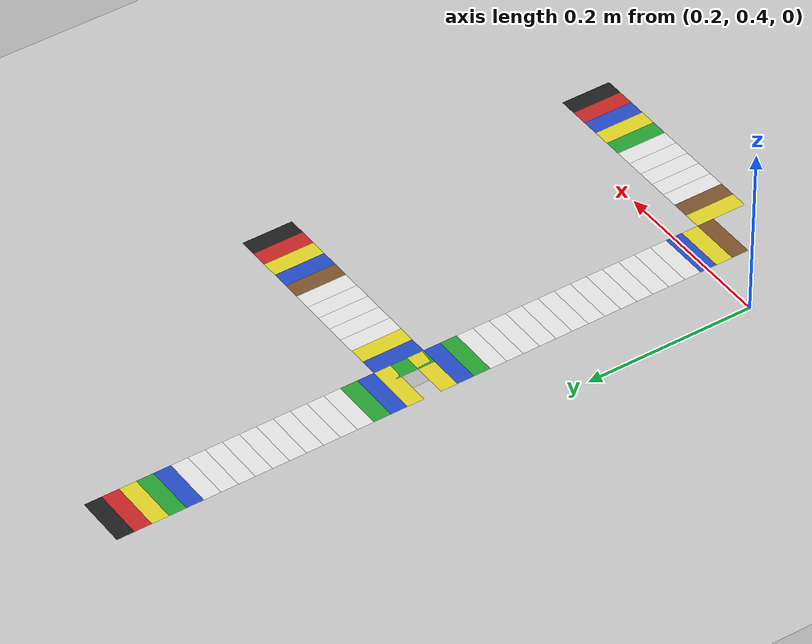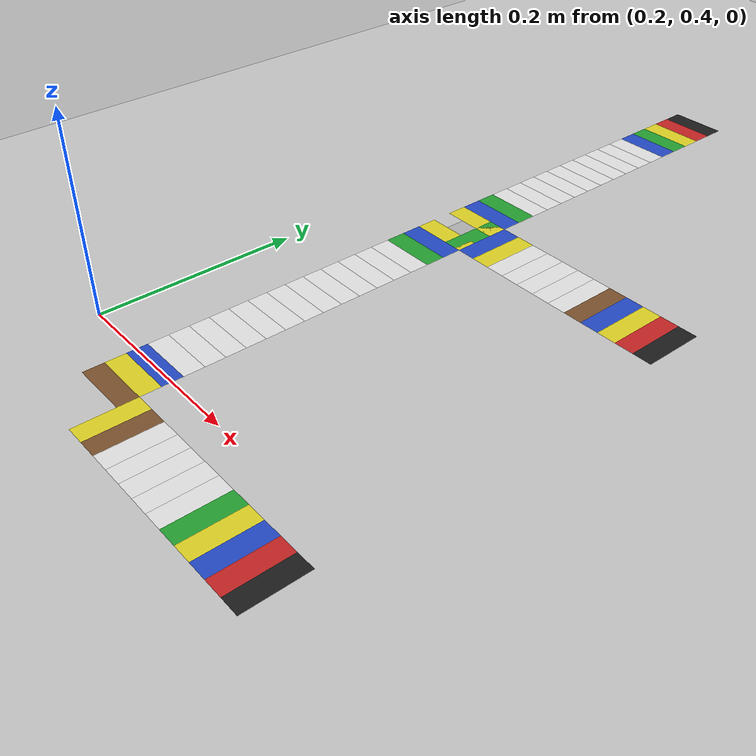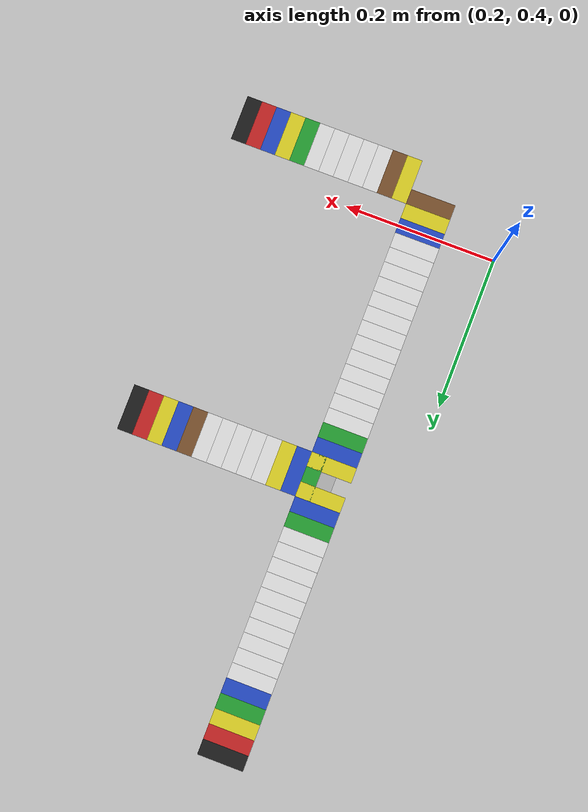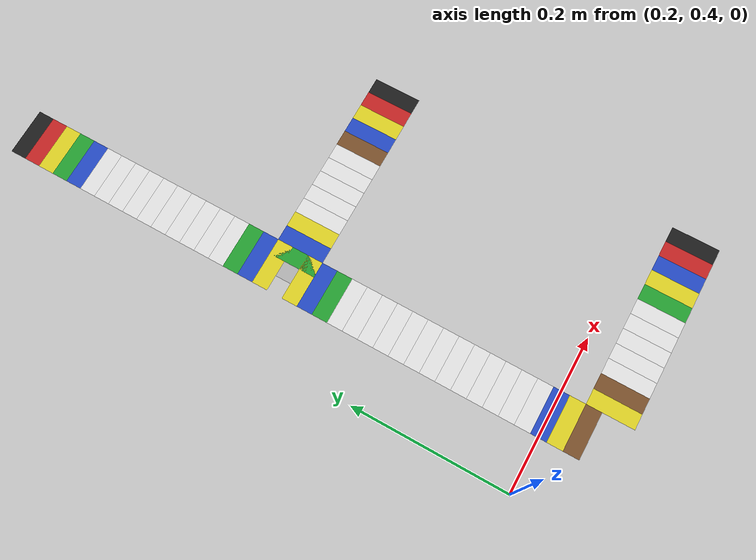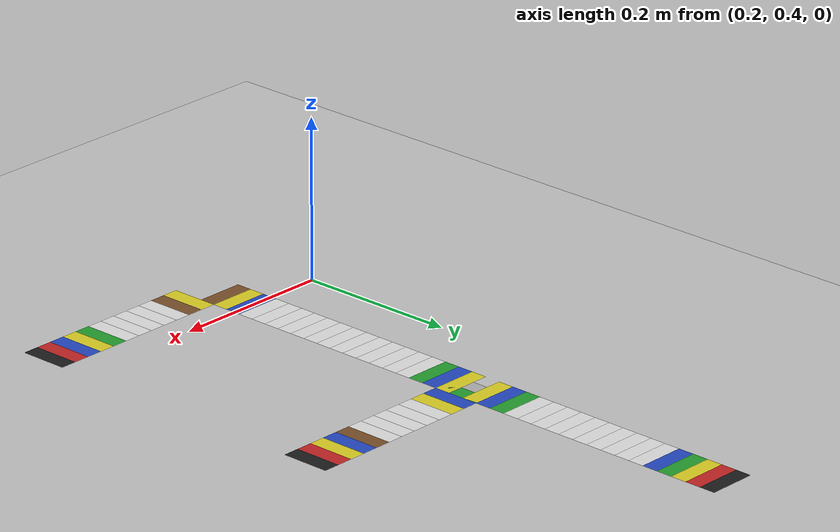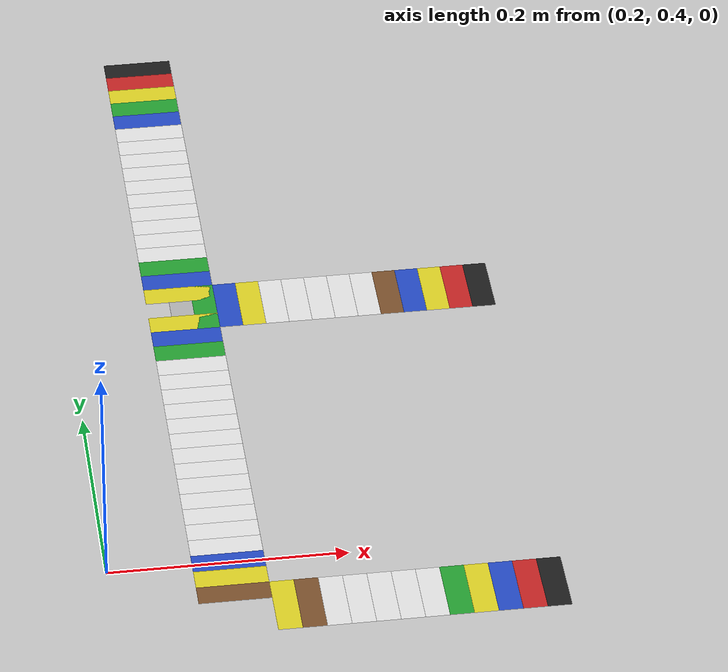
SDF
<sdf version="1.6">
 <world name="maskor_ev3_challenge">
  <model name="tileBD21">
   <pose>0.3 0.36 0.001 0 -0 0</pose>
   <static>1</static>
   <link name="link">
    <pose>0 0 0.001 0 -0 0</pose>
    <visual name="visual">
     <geometry><mesh><uri>model://maskor_ev3_tile/meshes/ev3_tile.dae</uri><scale>1 1 1</scale></mesh></geometry>
     <material>
      <script>
       <uri>model://maskor_ev3_tile/materials/scripts</uri>
       <uri>model://maskor_ev3_tile/materials/textures</uri>
       <name>brown</name>
      </script>
     </material>
    </visual>
   </link>
  </model>
  <model name="tileBD22">
   <pose>0.3 0.38 0.001 0 -0 0</pose>
   <static>1</static>
   <link name="link">
    <pose>0 0 0.001 0 -0 0</pose>
    <visual name="visual">
     <geometry><mesh><uri>model://maskor_ev3_tile/meshes/ev3_tile.dae</uri><scale>1 1 1</scale></mesh></geometry>
     <material>
      <script>
       <uri>model://maskor_ev3_tile/materials/scripts</uri>
       <uri>model://maskor_ev3_tile/materials/textures</uri>
       <name>yellow</name>
      </script>
     </material>
    </visual>
   </link>
  </model>
  <model name="tileBD23">
   <pose>0.3 0.4 0.001 0 -0 0</pose>
   <static>1</static>
   <link name="link">
    <pose>0 0 0.001 0 -0 0</pose>
    <visual name="visual">
     <geometry><mesh><uri>model://maskor_ev3_tile/meshes/ev3_tile.dae</uri><scale>1 1 1</scale></mesh></geometry>
     <material>
      <script>
       <uri>model://maskor_ev3_tile/materials/scripts</uri>
       <uri>model://maskor_ev3_tile/materials/textures</uri>
       <name>blue</name>
      </script>
     </material>
    </visual>
   </link>
  </model>
  <model name="tileBD24">
   <pose>0.3 0.42 0.001 0 -0 0</pose>
   <static>1</static>
   <link name="link">
    <pose>0 0 0.001 0 -0 0</pose>
    <visual name="visual">
     <geometry><mesh><uri>model://maskor_ev3_tile/meshes/ev3_tile.dae</uri><scale>1 1 1</scale></mesh></geometry>
     <material>
      <script>
       <uri>model://maskor_ev3_tile/materials/scripts</uri>
       <uri>model://maskor_ev3_tile/materials/textures</uri>
       <name>white</name>
      </script>
     </material>
    </visual>
   </link>
  </model>
  <model name="tileBD25">
   <pose>0.3 0.44 0.001 0 -0 0</pose>
   <static>1</static>
   <link name="link">
    <pose>0 0 0.001 0 -0 0</pose>
    <visual name="visual">
     <geometry><mesh><uri>model://maskor_ev3_tile/meshes/ev3_tile.dae</uri><scale>1 1 1</scale></mesh></geometry>
     <material>
      <script>
       <uri>model://maskor_ev3_tile/materials/scripts</uri>
       <uri>model://maskor_ev3_tile/materials/textures</uri>
       <name>white</name>
      </script>
     </material>
    </visual>
   </link>
  </model>
  <model name="tileBD26">
   <pose>0.3 0.46 0.001 0 -0 0</pose>
   <static>1</static>
   <link name="link">
    <pose>0 0 0.001 0 -0 0</pose>
    <visual name="visual">
     <geometry><mesh><uri>model://maskor_ev3_tile/meshes/ev3_tile.dae</uri><scale>1 1 1</scale></mesh></geometry>
     <material>
      <script>
       <uri>model://maskor_ev3_tile/materials/scripts</uri>
       <uri>model://maskor_ev3_tile/materials/textures</uri>
       <name>white</name>
      </script>
     </material>
    </visual>
   </link>
  </model>
  <model name="tileBD27">
   <pose>0.3 0.48 0.001 0 -0 0</pose>
   <static>1</static>
   <link name="link">
    <pose>0 0 0.001 0 -0 0</pose>
    <visual name="visual">
     <geometry><mesh><uri>model://maskor_ev3_tile/meshes/ev3_tile.dae</uri><scale>1 1 1</scale></mesh></geometry>
     <material>
      <script>
       <uri>model://maskor_ev3_tile/materials/scripts</uri>
       <uri>model://maskor_ev3_tile/materials/textures</uri>
       <name>white</name>
      </script>
     </material>
    </visual>
   </link>
  </model>
  <model name="tileBD28">
   <pose>0.3 0.5 0.001 0 -0 0</pose>
   <static>1</static>
   <link name="link">
    <pose>0 0 0.001 0 -0 0</pose>
    <visual name="visual">
     <geometry><mesh><uri>model://maskor_ev3_tile/meshes/ev3_tile.dae</uri><scale>1 1 1</scale></mesh></geometry>
     <material>
      <script>
       <uri>model://maskor_ev3_tile/materials/scripts</uri>
       <uri>model://maskor_ev3_tile/materials/textures</uri>
       <name>white</name>
      </script>
     </material>
    </visual>
   </link>
  </model>
  <model name="tileBD29">
   <pose>0.3 0.52 0.001 0 -0 0</pose>
   <static>1</static>
   <link name="link">
    <pose>0 0 0.001 0 -0 0</pose>
    <visual name="visual">
     <geometry><mesh><uri>model://maskor_ev3_tile/meshes/ev3_tile.dae</uri><scale>1 1 1</scale></mesh></geometry>
     <material>
      <script>
       <uri>model://maskor_ev3_tile/materials/scripts</uri>
       <uri>model://maskor_ev3_tile/materials/textures</uri>
       <name>white</name>
      </script>
     </material>
    </visual>
   </link>
  </model>
  <model name="tileBD30">
   <pose>0.3 0.54 0.001 0 -0 0</pose>
   <static>1</static>
   <link name="link">
    <pose>0 0 0.001 0 -0 0</pose>
    <visual name="visual">
     <geometry><mesh><uri>model://maskor_ev3_tile/meshes/ev3_tile.dae</uri><scale>1 1 1</scale></mesh></geometry>
     <material>
      <script>
       <uri>model://maskor_ev3_tile/materials/scripts</uri>
       <uri>model://maskor_ev3_tile/materials/textures</uri>
       <name>white</name>
      </script>
     </material>
    </visual>
   </link>
  </model>
  <model name="tileBD31">
   <pose>0.3 0.56 0.001 0 -0 0</pose>
   <static>1</static>
   <link name="link">
    <pose>0 0 0.001 0 -0 0</pose>
    <visual name="visual">
     <geometry><mesh><uri>model://maskor_ev3_tile/meshes/ev3_tile.dae</uri><scale>1 1 1</scale></mesh></geometry>
     <material>
      <script>
       <uri>model://maskor_ev3_tile/materials/scripts</uri>
       <uri>model://maskor_ev3_tile/materials/textures</uri>
       <name>white</name>
      </script>
     </material>
    </visual>
   </link>
  </model>
  <model name="tileBD32">
   <pose>0.3 0.58 0.001 0 -0 0</pose>
   <static>1</static>
   <link name="link">
    <pose>0 0 0.001 0 -0 0</pose>
    <visual name="visual">
     <geometry><mesh><uri>model://maskor_ev3_tile/meshes/ev3_tile.dae</uri><scale>1 1 1</scale></mesh></geometry>
     <material>
      <script>
       <uri>model://maskor_ev3_tile/materials/scripts</uri>
       <uri>model://maskor_ev3_tile/materials/textures</uri>
       <name>white</name>
      </script>
     </material>
    </visual>
   </link>
  </model>
  <model name="tileBD33">
   <pose>0.3 0.6 0.001 0 -0 0</pose>
   <static>1</static>
   <link name="link">
    <pose>0 0 0.001 0 -0 0</pose>
    <visual name="visual">
     <geometry><mesh><uri>model://maskor_ev3_tile/meshes/ev3_tile.dae</uri><scale>1 1 1</scale></mesh></geometry>
     <material>
      <script>
       <uri>model://maskor_ev3_tile/materials/scripts</uri>
       <uri>model://maskor_ev3_tile/materials/textures</uri>
       <name>white</name>
      </script>
     </material>
    </visual>
   </link>
  </model>
  <model name="tileBD34">
   <pose>0.3 0.62 0.001 0 -0 0</pose>
   <static>1</static>
   <link name="link">
    <pose>0 0 0.001 0 -0 0</pose>
    <visual name="visual">
     <geometry><mesh><uri>model://maskor_ev3_tile/meshes/ev3_tile.dae</uri><scale>1 1 1</scale></mesh></geometry>
     <material>
      <script>
       <uri>model://maskor_ev3_tile/materials/scripts</uri>
       <uri>model://maskor_ev3_tile/materials/textures</uri>
       <name>white</name>
      </script>
     </material>
    </visual>
   </link>
  </model>
  <model name="tileBD35">
   <pose>0.3 0.64 0.001 0 -0 0</pose>
   <static>1</static>
   <link name="link">
    <pose>0 0 0.001 0 -0 0</pose>
    <visual name="visual">
     <geometry><mesh><uri>model://maskor_ev3_tile/meshes/ev3_tile.dae</uri><scale>1 1 1</scale></mesh></geometry>
     <material>
      <script>
       <uri>model://maskor_ev3_tile/materials/scripts</uri>
       <uri>model://maskor_ev3_tile/materials/textures</uri>
       <name>white</name>
      </script>
     </material>
    </visual>
   </link>
  </model>
  <model name="tileBD36">
   <pose>0.3 0.66 0.001 0 -0 0</pose>
   <static>1</static>
   <link name="link">
    <pose>0 0 0.001 0 -0 0</pose>
    <visual name="visual">
     <geometry><mesh><uri>model://maskor_ev3_tile/meshes/ev3_tile.dae</uri><scale>1 1 1</scale></mesh></geometry>
     <material>
      <script>
       <uri>model://maskor_ev3_tile/materials/scripts</uri>
       <uri>model://maskor_ev3_tile/materials/textures</uri>
       <name>white</name>
      </script>
     </material>
    </visual>
   </link>
  </model>
  <model name="tileBD37">
   <pose>0.3 0.68 0.001 0 -0 0</pose>
   <static>1</static>
   <link name="link">
    <pose>0 0 0.001 0 -0 0</pose>
    <visual name="visual">
     <geometry><mesh><uri>model://maskor_ev3_tile/meshes/ev3_tile.dae</uri><scale>1 1 1</scale></mesh></geometry>
     <material>
      <script>
       <uri>model://maskor_ev3_tile/materials/scripts</uri>
       <uri>model://maskor_ev3_tile/materials/textures</uri>
       <name>green</name>
      </script>
     </material>
    </visual>
   </link>
  </model>
  <model name="tileBD38">
   <pose>0.3 0.7 0.001 0 -0 0</pose>
   <static>1</static>
   <link name="link">
    <pose>0 0 0.001 0 -0 0</pose>
    <visual name="visual">
     <geometry><mesh><uri>model://maskor_ev3_tile/meshes/ev3_tile.dae</uri><scale>1 1 1</scale></mesh></geometry>
     <material>
      <script>
       <uri>model://maskor_ev3_tile/materials/scripts</uri>
       <uri>model://maskor_ev3_tile/materials/textures</uri>
       <name>blue</name>
      </script>
     </material>
    </visual>
   </link>
  </model>
  <model name="tileBD39">
   <pose>0.3 0.72 0.001 0 -0 0</pose>
   <static>1</static>
   <link name="link">
    <pose>0 0 0.001 0 -0 0</pose>
    <visual name="visual">
     <geometry><mesh><uri>model://maskor_ev3_tile/meshes/ev3_tile.dae</uri><scale>1 1 1</scale></mesh></geometry>
     <material>
      <script>
       <uri>model://maskor_ev3_tile/materials/scripts</uri>
       <uri>model://maskor_ev3_tile/materials/textures</uri>
       <name>yellow</name>
      </script>
     </material>
    </visual>
   </link>
  </model>
  <model name="tileBD40">
   <pose>0.3 0.74 0.002 0 -0 0</pose>
   <static>1</static>
   <link name="link">
    <visual name="visual">
     <geometry>
      <mesh><uri>model://maskor_ev3_tile_center/meshes/ev3_tile_center.dae</uri><scale>1 1 1</scale></mesh>
     </geometry>
     <material>
      <script>
       <uri>model://maskor_ev3_tile_center/materials/scripts</uri>
       <uri>model://maskor_ev3_tile_center/materials/textures</uri>
       <name>center</name>
      </script>
     </material>
    </visual>
   </link>
  </model>
  <model name="tileBD41">
   <pose>0.3 0.76 0.001 0 -0 0</pose>
   <static>1</static>
   <link name="link">
    <pose>0 0 0.001 0 -0 0</pose>
    <visual name="visual">
     <geometry><mesh><uri>model://maskor_ev3_tile/meshes/ev3_tile.dae</uri><scale>1 1 1</scale></mesh></geometry>
     <material>
      <script>
       <uri>model://maskor_ev3_tile/materials/scripts</uri>
       <uri>model://maskor_ev3_tile/materials/textures</uri>
       <name>yellow</name>
      </script>
     </material>
    </visual>
   </link>
  </model>
  <model name="tileBD42">
   <pose>0.3 0.78 0.001 0 -0 0</pose>
   <static>1</static>
   <link name="link">
    <pose>0 0 0.001 0 -0 0</pose>
    <visual name="visual">
     <geometry><mesh><uri>model://maskor_ev3_tile/meshes/ev3_tile.dae</uri><scale>1 1 1</scale></mesh></geometry>
     <material>
      <script>
       <uri>model://maskor_ev3_tile/materials/scripts</uri>
       <uri>model://maskor_ev3_tile/materials/textures</uri>
       <name>blue</name>
      </script>
     </material>
    </visual>
   </link>
  </model>
  <model name="tileBD43">
   <pose>0.3 0.8 0.001 0 -0 0</pose>
   <static>1</static>
   <link name="link">
    <pose>0 0 0.001 0 -0 0</pose>
    <visual name="visual">
     <geometry><mesh><uri>model://maskor_ev3_tile/meshes/ev3_tile.dae</uri><scale>1 1 1</scale></mesh></geometry>
     <material>
      <script>
       <uri>model://maskor_ev3_tile/materials/scripts</uri>
       <uri>model://maskor_ev3_tile/materials/textures</uri>
       <name>green</name>
      </script>
     </material>
    </visual>
   </link>
  </model>
  <model name="tileBD44">
   <pose>0.3 0.82 0.001 0 -0 0</pose>
   <static>1</static>
   <link name="link">
    <pose>0 0 0.001 0 -0 0</pose>
    <visual name="visual">
     <geometry><mesh><uri>model://maskor_ev3_tile/meshes/ev3_tile.dae</uri><scale>1 1 1</scale></mesh></geometry>
     <material>
      <script>
       <uri>model://maskor_ev3_tile/materials/scripts</uri>
       <uri>model://maskor_ev3_tile/materials/textures</uri>
       <name>white</name>
      </script>
     </material>
    </visual>
   </link>
  </model>
  <model name="tileBD45">
   <pose>0.3 0.84 0.001 0 -0 0</pose>
   <static>1</static>
   <link name="link">
    <pose>0 0 0.001 0 -0 0</pose>
    <visual name="visual">
     <geometry><mesh><uri>model://maskor_ev3_tile/meshes/ev3_tile.dae</uri><scale>1 1 1</scale></mesh></geometry>
     <material>
      <script>
       <uri>model://maskor_ev3_tile/materials/scripts</uri>
       <uri>model://maskor_ev3_tile/materials/textures</uri>
       <name>white</name>
      </script>
     </material>
    </visual>
   </link>
  </model>
  <model name="tileBD46">
   <pose>0.3 0.86 0.001 0 -0 0</pose>
   <static>1</static>
   <link name="link">
    <pose>0 0 0.001 0 -0 0</pose>
    <visual name="visual">
     <geometry><mesh><uri>model://maskor_ev3_tile/meshes/ev3_tile.dae</uri><scale>1 1 1</scale></mesh></geometry>
     <material>
      <script>
       <uri>model://maskor_ev3_tile/materials/scripts</uri>
       <uri>model://maskor_ev3_tile/materials/textures</uri>
       <name>white</name>
      </script>
     </material>
    </visual>
   </link>
  </model>
  <model name="tileBD47">
   <pose>0.3 0.88 0.001 0 -0 0</pose>
   <static>1</static>
   <link name="link">
    <pose>0 0 0.001 0 -0 0</pose>
    <visual name="visual">
     <geometry><mesh><uri>model://maskor_ev3_tile/meshes/ev3_tile.dae</uri><scale>1 1 1</scale></mesh></geometry>
     <material>
      <script>
       <uri>model://maskor_ev3_tile/materials/scripts</uri>
       <uri>model://maskor_ev3_tile/materials/textures</uri>
       <name>white</name>
      </script>
     </material>
    </visual>
   </link>
  </model>
  <model name="tileBD48">
   <pose>0.3 0.9 0.001 0 -0 0</pose>
   <static>1</static>
   <link name="link">
    <pose>0 0 0.001 0 -0 0</pose>
    <visual name="visual">
     <geometry><mesh><uri>model://maskor_ev3_tile/meshes/ev3_tile.dae</uri><scale>1 1 1</scale></mesh></geometry>
     <material>
      <script>
       <uri>model://maskor_ev3_tile/materials/scripts</uri>
       <uri>model://maskor_ev3_tile/materials/textures</uri>
       <name>white</name>
      </script>
     </material>
    </visual>
   </link>
  </model>
  <model name="tileBD49">
   <pose>0.3 0.92 0.001 0 -0 0</pose>
   <static>1</static>
   <link name="link">
    <pose>0 0 0.001 0 -0 0</pose>
    <visual name="visual">
     <geometry><mesh><uri>model://maskor_ev3_tile/meshes/ev3_tile.dae</uri><scale>1 1 1</scale></mesh></geometry>
     <material>
      <script>
       <uri>model://maskor_ev3_tile/materials/scripts</uri>
       <uri>model://maskor_ev3_tile/materials/textures</uri>
       <name>white</name>
      </script>
     </material>
    </visual>
   </link>
  </model>
  <model name="tileBD50">
   <pose>0.3 0.94 0.001 0 -0 0</pose>
   <static>1</static>
   <link name="link">
    <pose>0 0 0.001 0 -0 0</pose>
    <visual name="visual">
     <geometry><mesh><uri>model://maskor_ev3_tile/meshes/ev3_tile.dae</uri><scale>1 1 1</scale></mesh></geometry>
     <material>
      <script>
       <uri>model://maskor_ev3_tile/materials/scripts</uri>
       <uri>model://maskor_ev3_tile/materials/textures</uri>
       <name>white</name>
      </script>
     </material>
    </visual>
   </link>
  </model>
  <model name="tileBD51">
   <pose>0.3 0.96 0.001 0 -0 0</pose>
   <static>1</static>
   <link name="link">
    <pose>0 0 0.001 0 -0 0</pose>
    <visual name="visual">
     <geometry><mesh><uri>model://maskor_ev3_tile/meshes/ev3_tile.dae</uri><scale>1 1 1</scale></mesh></geometry>
     <material>
      <script>
       <uri>model://maskor_ev3_tile/materials/scripts</uri>
       <uri>model://maskor_ev3_tile/materials/textures</uri>
       <name>white</name>
      </script>
     </material>
    </visual>
   </link>
  </model>
  <model name="tileBD52">
   <pose>0.3 0.98 0.001 0 -0 0</pose>
   <static>1</static>
   <link name="link">
    <pose>0 0 0.001 0 -0 0</pose>
    <visual name="visual">
     <geometry><mesh><uri>model://maskor_ev3_tile/meshes/ev3_tile.dae</uri><scale>1 1 1</scale></mesh></geometry>
     <material>
      <script>
       <uri>model://maskor_ev3_tile/materials/scripts</uri>
       <uri>model://maskor_ev3_tile/materials/textures</uri>
       <name>white</name>
      </script>
     </material>
    </visual>
   </link>
  </model>
  <model name="tileBD57">
   <pose>0.3 1.08 0.001 0 -0 0</pose>
   <static>1</static>
   <link name="link">
    <pose>0 0 0.001 0 -0 0</pose>
    <visual name="visual">
     <geometry><mesh><uri>model://maskor_ev3_tile/meshes/ev3_tile.dae</uri><scale>1 1 1</scale></mesh></geometry>
     <material>
      <script>
       <uri>model://maskor_ev3_tile/materials/scripts</uri>
       <uri>model://maskor_ev3_tile/materials/textures</uri>
       <name>red</name>
      </script>
     </material>
    </visual>
   </link>
  </model>
  <model name="tileBD53">
   <pose>0.3 1 0.001 0 -0 0</pose>
   <static>1</static>
   <link name="link">
    <pose>0 0 0.001 0 -0 0</pose>
    <visual name="visual">
     <geometry><mesh><uri>model://maskor_ev3_tile/meshes/ev3_tile.dae</uri><scale>1 1 1</scale></mesh></geometry>
     <material>
      <script>
       <uri>model://maskor_ev3_tile/materials/scripts</uri>
       <uri>model://maskor_ev3_tile/materials/textures</uri>
       <name>white</name>
      </script>
     </material>
    </visual>
   </link>
  </model>
  <model name="tileBD54">
   <pose>0.3 1.02 0.001 0 -0 0</pose>
   <static>1</static>
   <link name="link">
    <pose>0 0 0.001 0 -0 0</pose>
    <visual name="visual">
     <geometry><mesh><uri>model://maskor_ev3_tile/meshes/ev3_tile.dae</uri><scale>1 1 1</scale></mesh></geometry>
     <material>
      <script>
       <uri>model://maskor_ev3_tile/materials/scripts</uri>
       <uri>model://maskor_ev3_tile/materials/textures</uri>
       <name>blue</name>
      </script>
     </material>
    </visual>
   </link>
  </model>
  <model name="tileBD55">
   <pose>0.3 1.04 0.001 0 -0 0</pose>
   <static>1</static>
   <link name="link">
    <pose>0 0 0.001 0 -0 0</pose>
    <visual name="visual">
     <geometry><mesh><uri>model://maskor_ev3_tile/meshes/ev3_tile.dae</uri><scale>1 1 1</scale></mesh></geometry>
     <material>
      <script>
       <uri>model://maskor_ev3_tile/materials/scripts</uri>
       <uri>model://maskor_ev3_tile/materials/textures</uri>
       <name>green</name>
      </script>
     </material>
    </visual>
   </link>
  </model>
  <model name="tileBD56">
   <pose>0.3 1.06 0.001 0 -0 0</pose>
   <static>1</static>
   <link name="link">
    <pose>0 0 0.001 0 -0 0</pose>
    <visual name="visual">
     <geometry><mesh><uri>model://maskor_ev3_tile/meshes/ev3_tile.dae</uri><scale>1 1 1</scale></mesh></geometry>
     <material>
      <script>
       <uri>model://maskor_ev3_tile/materials/scripts</uri>
       <uri>model://maskor_ev3_tile/materials/textures</uri>
       <name>yellow</name>
      </script>
     </material>
    </visual>
   </link>
  </model>
  <model name="tileBD58">
   <pose>0.3 1.1 0.001 0 -0 0</pose>
   <static>1</static>
   <link name="link">
    <pose>0 0 0.001 0 -0 0</pose>
    <visual name="visual">
     <geometry><mesh><uri>model://maskor_ev3_tile/meshes/ev3_tile.dae</uri><scale>1 1 1</scale></mesh></geometry>
     <material>
      <script>
       <uri>model://maskor_ev3_tile/materials/scripts</uri>
       <uri>model://maskor_ev3_tile/materials/textures</uri>
       <name>black</name>
      </script>
     </material>
    </visual>
   </link>
  </model>
  <model name="tileEF32">
   <pose>0.34 0.34 0.001 0 -0 1.5708</pose>
   <static>1</static>
   <link name="link">
    <pose>0 0 0.001 0 -0 0</pose>
    <visual name="visual">
     <geometry><mesh><uri>model://maskor_ev3_tile/meshes/ev3_tile.dae</uri><scale>1 1 1</scale></mesh></geometry>
     <material>
      <script>
       <uri>model://maskor_ev3_tile/materials/scripts</uri>
       <uri>model://maskor_ev3_tile/materials/textures</uri>
       <name>yellow</name>
      </script>
     </material>
    </visual>
   </link>
  </model>
  <model name="tileEF33">
   <pose>0.36 0.34 0.001 0 -0 1.5708</pose>
   <static>1</static>
   <link name="link">
    <pose>0 0 0.001 0 -0 0</pose>
    <visual name="visual">
     <geometry><mesh><uri>model://maskor_ev3_tile/meshes/ev3_tile.dae</uri><scale>1 1 1</scale></mesh></geometry>
     <material>
      <script>
       <uri>model://maskor_ev3_tile/materials/scripts</uri>
       <uri>model://maskor_ev3_tile/materials/textures</uri>
       <name>brown</name>
      </script>
     </material>
    </visual>
   </link>
  </model>
  <model name="tileEF34">
   <pose>0.38 0.34 0.001 0 -0 1.5708</pose>
   <static>1</static>
   <link name="link">
    <pose>0 0 0.001 0 -0 0</pose>
    <visual name="visual">
     <geometry><mesh><uri>model://maskor_ev3_tile/meshes/ev3_tile.dae</uri><scale>1 1 1</scale></mesh></geometry>
     <material>
      <script>
       <uri>model://maskor_ev3_tile/materials/scripts</uri>
       <uri>model://maskor_ev3_tile/materials/textures</uri>
       <name>white</name>
      </script>
     </material>
    </visual>
   </link>
  </model>
  <model name="tileEF35">
   <pose>0.4 0.34 0.001 0 -0 1.5708</pose>
   <static>1</static>
   <link name="link">
    <pose>0 0 0.001 0 -0 0</pose>
    <visual name="visual">
     <geometry><mesh><uri>model://maskor_ev3_tile/meshes/ev3_tile.dae</uri><scale>1 1 1</scale></mesh></geometry>
     <material>
      <script>
       <uri>model://maskor_ev3_tile/materials/scripts</uri>
       <uri>model://maskor_ev3_tile/materials/textures</uri>
       <name>white</name>
      </script>
     </material>
    </visual>
   </link>
  </model>
  <model name="tileEF36">
   <pose>0.42 0.34 0.001 0 -0 1.5708</pose>
   <static>1</static>
   <link name="link">
    <pose>0 0 0.001 0 -0 0</pose>
    <visual name="visual">
     <geometry><mesh><uri>model://maskor_ev3_tile/meshes/ev3_tile.dae</uri><scale>1 1 1</scale></mesh></geometry>
     <material>
      <script>
       <uri>model://maskor_ev3_tile/materials/scripts</uri>
       <uri>model://maskor_ev3_tile/materials/textures</uri>
       <name>white</name>
      </script>
     </material>
    </visual>
   </link>
  </model>
  <model name="tileEF37">
   <pose>0.44 0.34 0.001 0 -0 1.5708</pose>
   <static>1</static>
   <link name="link">
    <pose>0 0 0.001 0 -0 0</pose>
    <visual name="visual">
     <geometry><mesh><uri>model://maskor_ev3_tile/meshes/ev3_tile.dae</uri><scale>1 1 1</scale></mesh></geometry>
     <material>
      <script>
       <uri>model://maskor_ev3_tile/materials/scripts</uri>
       <uri>model://maskor_ev3_tile/materials/textures</uri>
       <name>white</name>
      </script>
     </material>
    </visual>
   </link>
  </model>
  <model name="tileEF38">
   <pose>0.46 0.34 0.001 0 -0 1.5708</pose>
   <static>1</static>
   <link name="link">
    <pose>0 0 0.001 0 -0 0</pose>
    <visual name="visual">
     <geometry><mesh><uri>model://maskor_ev3_tile/meshes/ev3_tile.dae</uri><scale>1 1 1</scale></mesh></geometry>
     <material>
      <script>
       <uri>model://maskor_ev3_tile/materials/scripts</uri>
       <uri>model://maskor_ev3_tile/materials/textures</uri>
       <name>white</name>
      </script>
     </material>
    </visual>
   </link>
  </model>
  <model name="tileEF39">
   <pose>0.48 0.34 0.001 0 -0 1.5708</pose>
   <static>1</static>
   <link name="link">
    <pose>0 0 0.001 0 -0 0</pose>
    <visual name="visual">
     <geometry><mesh><uri>model://maskor_ev3_tile/meshes/ev3_tile.dae</uri><scale>1 1 1</scale></mesh></geometry>
     <material>
      <script>
       <uri>model://maskor_ev3_tile/materials/scripts</uri>
       <uri>model://maskor_ev3_tile/materials/textures</uri>
       <name>green</name>
      </script>
     </material>
    </visual>
   </link>
  </model>
  <model name="tileEF40">
   <pose>0.5 0.34 0.001 0 -0 1.5708</pose>
   <static>1</static>
   <link name="link">
    <pose>0 0 0.001 0 -0 0</pose>
    <visual name="visual">
     <geometry><mesh><uri>model://maskor_ev3_tile/meshes/ev3_tile.dae</uri><scale>1 1 1</scale></mesh></geometry>
     <material>
      <script>
       <uri>model://maskor_ev3_tile/materials/scripts</uri>
       <uri>model://maskor_ev3_tile/materials/textures</uri>
       <name>yellow</name>
      </script>
     </material>
    </visual>
   </link>
  </model>
  <model name="tileEF41">
   <pose>0.52 0.34 0.001 0 -0 1.5708</pose>
   <static>1</static>
   <link name="link">
    <pose>0 0 0.001 0 -0 0</pose>
    <visual name="visual">
     <geometry><mesh><uri>model://maskor_ev3_tile/meshes/ev3_tile.dae</uri><scale>1 1 1</scale></mesh></geometry>
     <material>
      <script>
       <uri>model://maskor_ev3_tile/materials/scripts</uri>
       <uri>model://maskor_ev3_tile/materials/textures</uri>
       <name>blue</name>
      </script>
     </material>
    </visual>
   </link>
  </model>
  <model name="tileEF42">
   <pose>0.54 0.34 0.001 0 -0 1.5708</pose>
   <static>1</static>
   <link name="link">
    <pose>0 0 0.001 0 -0 0</pose>
    <visual name="visual">
     <geometry><mesh><uri>model://maskor_ev3_tile/meshes/ev3_tile.dae</uri><scale>1 1 1</scale></mesh></geometry>
     <material>
      <script>
       <uri>model://maskor_ev3_tile/materials/scripts</uri>
       <uri>model://maskor_ev3_tile/materials/textures</uri>
       <name>red</name>
      </script>
     </material>
    </visual>
   </link>
  </model>
  <model name="tileEF43">
   <pose>0.56 0.34 0.001 0 -0 1.5708</pose>
   <static>1</static>
   <link name="link">
    <pose>0 0 0.001 0 -0 0</pose>
    <visual name="visual">
     <geometry><mesh><uri>model://maskor_ev3_tile/meshes/ev3_tile.dae</uri><scale>1 1 1</scale></mesh></geometry>
     <material>
      <script>
       <uri>model://maskor_ev3_tile/materials/scripts</uri>
       <uri>model://maskor_ev3_tile/materials/textures</uri>
       <name>black</name>
      </script>
     </material>
    </visual>
   </link>
  </model>
  <model name="tileGH31">
   <pose>0.32 0.74 0.001 0 -0 1.5708</pose>
   <static>1</static>
   <link name="link">
    <pose>0 0 0.001 0 -0 0</pose>
    <visual name="visual">
     <geometry><mesh><uri>model://maskor_ev3_tile/meshes/ev3_tile.dae</uri><scale>1 1 1</scale></mesh></geometry>
     <material>
      <script>
       <uri>model://maskor_ev3_tile/materials/scripts</uri>
       <uri>model://maskor_ev3_tile/materials/textures</uri>
       <name>green</name>
      </script>
     </material>
    </visual>
   </link>
  </model>
  <model name="tileGH32">
   <pose>0.34 0.74 0.001 0 -0 1.5708</pose>
   <static>1</static>
   <link name="link">
    <pose>0 0 0.001 0 -0 0</pose>
    <visual name="visual">
     <geometry><mesh><uri>model://maskor_ev3_tile/meshes/ev3_tile.dae</uri><scale>1 1 1</scale></mesh></geometry>
     <material>
      <script>
       <uri>model://maskor_ev3_tile/materials/scripts</uri>
       <uri>model://maskor_ev3_tile/materials/textures</uri>
       <name>blue</name>
      </script>
     </material>
    </visual>
   </link>
  </model>
  <model name="tileGH33">
   <pose>0.36 0.74 0.001 0 -0 1.5708</pose>
   <static>1</static>
   <link name="link">
    <pose>0 0 0.001 0 -0 0</pose>
    <visual name="visual">
     <geometry><mesh><uri>model://maskor_ev3_tile/meshes/ev3_tile.dae</uri><scale>1 1 1</scale></mesh></geometry>
     <material>
      <script>
       <uri>model://maskor_ev3_tile/materials/scripts</uri>
       <uri>model://maskor_ev3_tile/materials/textures</uri>
       <name>yellow</name>
      </script>
     </material>
    </visual>
   </link>
  </model>
  <model name="tileGH34">
   <pose>0.38 0.74 0.001 0 -0 1.5708</pose>
   <static>1</static>
   <link name="link">
    <pose>0 0 0.001 0 -0 0</pose>
    <visual name="visual">
     <geometry><mesh><uri>model://maskor_ev3_tile/meshes/ev3_tile.dae</uri><scale>1 1 1</scale></mesh></geometry>
     <material>
      <script>
       <uri>model://maskor_ev3_tile/materials/scripts</uri>
       <uri>model://maskor_ev3_tile/materials/textures</uri>
       <name>white</name>
      </script>
     </material>
    </visual>
   </link>
  </model>
  <model name="tileGH37">
   <pose>0.44 0.74 0.001 0 -0 1.5708</pose>
   <static>1</static>
   <link name="link">
    <pose>0 0 0.001 0 -0 0</pose>
    <visual name="visual">
     <geometry><mesh><uri>model://maskor_ev3_tile/meshes/ev3_tile.dae</uri><scale>1 1 1</scale></mesh></geometry>
     <material>
      <script>
       <uri>model://maskor_ev3_tile/materials/scripts</uri>
       <uri>model://maskor_ev3_tile/materials/textures</uri>
       <name>white</name>
      </script>
     </material>
    </visual>
   </link>
  </model>
  <model name="tileGH35">
   <pose>0.4 0.74 0.001 0 -0 1.5708</pose>
   <static>1</static>
   <link name="link">
    <pose>0 0 0.001 0 -0 0</pose>
    <visual name="visual">
     <geometry><mesh><uri>model://maskor_ev3_tile/meshes/ev3_tile.dae</uri><scale>1 1 1</scale></mesh></geometry>
     <material>
      <script>
       <uri>model://maskor_ev3_tile/materials/scripts</uri>
       <uri>model://maskor_ev3_tile/materials/textures</uri>
       <name>white</name>
      </script>
     </material>
    </visual>
   </link>
  </model>
  <model name="tileGH36">
   <pose>0.42 0.74 0.001 0 -0 1.5708</pose>
   <static>1</static>
   <link name="link">
    <pose>0 0 0.001 0 -0 0</pose>
    <visual name="visual">
     <geometry><mesh><uri>model://maskor_ev3_tile/meshes/ev3_tile.dae</uri><scale>1 1 1</scale></mesh></geometry>
     <material>
      <script>
       <uri>model://maskor_ev3_tile/materials/scripts</uri>
       <uri>model://maskor_ev3_tile/materials/textures</uri>
       <name>white</name>
      </script>
     </material>
    </visual>
   </link>
  </model>
  <model name="tileGH38">
   <pose>0.46 0.74 0.001 0 -0 1.5708</pose>
   <static>1</static>
   <link name="link">
    <pose>0 0 0.001 0 -0 0</pose>
    <visual name="visual">
     <geometry><mesh><uri>model://maskor_ev3_tile/meshes/ev3_tile.dae</uri><scale>1 1 1</scale></mesh></geometry>
     <material>
      <script>
       <uri>model://maskor_ev3_tile/materials/scripts</uri>
       <uri>model://maskor_ev3_tile/materials/textures</uri>
       <name>white</name>
      </script>
     </material>
    </visual>
   </link>
  </model>
  <model name="tileGH39">
   <pose>0.48 0.74 0.001 0 -0 1.5708</pose>
   <static>1</static>
   <link name="link">
    <pose>0 0 0.001 0 -0 0</pose>
    <visual name="visual">
     <geometry><mesh><uri>model://maskor_ev3_tile/meshes/ev3_tile.dae</uri><scale>1 1 1</scale></mesh></geometry>
     <material>
      <script>
       <uri>model://maskor_ev3_tile/materials/scripts</uri>
       <uri>model://maskor_ev3_tile/materials/textures</uri>
       <name>brown</name>
      </script>
     </material>
    </visual>
   </link>
  </model>
  <model name="tileGH40">
   <pose>0.5 0.74 0.001 0 -0 1.5708</pose>
   <static>1</static>
   <link name="link">
    <pose>0 0 0.001 0 -0 0</pose>
    <visual name="visual">
     <geometry><mesh><uri>model://maskor_ev3_tile/meshes/ev3_tile.dae</uri><scale>1 1 1</scale></mesh></geometry>
     <material>
      <script>
       <uri>model://maskor_ev3_tile/materials/scripts</uri>
       <uri>model://maskor_ev3_tile/materials/textures</uri>
       <name>blue</name>
      </script>
     </material>
    </visual>
   </link>
  </model>
  <model name="tileGH41">
   <pose>0.52 0.74 0.001 0 -0 1.5708</pose>
   <static>1</static>
   <link name="link">
    <pose>0 0 0.001 0 -0 0</pose>
    <visual name="visual">
     <geometry><mesh><uri>model://maskor_ev3_tile/meshes/ev3_tile.dae</uri><scale>1 1 1</scale></mesh></geometry>
     <material>
      <script>
       <uri>model://maskor_ev3_tile/materials/scripts</uri>
       <uri>model://maskor_ev3_tile/materials/textures</uri>
       <name>yellow</name>
      </script>
     </material>
    </visual>
   </link>
  </model>
  <model name="tileGH42">
   <pose>0.54 0.74 0.001 0 -0 1.5708</pose>
   <static>1</static>
   <link name="link">
    <pose>0 0 0.001 0 -0 0</pose>
    <visual name="visual">
     <geometry><mesh><uri>model://maskor_ev3_tile/meshes/ev3_tile.dae</uri><scale>1 1 1</scale></mesh></geometry>
     <material>
      <script>
       <uri>model://maskor_ev3_tile/materials/scripts</uri>
       <uri>model://maskor_ev3_tile/materials/textures</uri>
       <name>red</name>
      </script>
     </material>
    </visual>
   </link>
  </model>
  <model name="tileGH43">
   <pose>0.56 0.74 0.001 0 -0 1.5708</pose>
   <static>1</static>
   <link name="link">
    <pose>0 0 0.001 0 -0 0</pose>
    <visual name="visual">
     <geometry><mesh><uri>model://maskor_ev3_tile/meshes/ev3_tile.dae</uri><scale>1 1 1</scale></mesh></geometry>
     <material>
      <script>
       <uri>model://maskor_ev3_tile/materials/scripts</uri>
       <uri>model://maskor_ev3_tile/materials/textures</uri>
       <name>black</name>
      </script>
     </material>
    </visual>
   </link>
  </model>
  <model name="ground_plane">
   <static>1</static>
   <link name="link">
    <collision name="collision">
     <geometry><plane><normal>0 0 1</normal><size>100 100</size></plane></geometry>
     <surface><friction><ode><mu>100</mu><mu2>50</mu2></ode></friction></surface>
    </collision>
    <visual name="visual">
     <cast_shadows>0</cast_shadows>
     <geometry><plane><normal>0 0 1</normal><size>100 100</size></plane></geometry>
     <material>
      <script><uri>file://media/materials/scripts/gazebo.material</uri><name>Gazebo/Grey</name></script>
     </material>
    </visual>
   </link>
   <pose>0.114931 0.220781 0 0 -0 0</pose>
  </model>
 </world>
</sdf>
